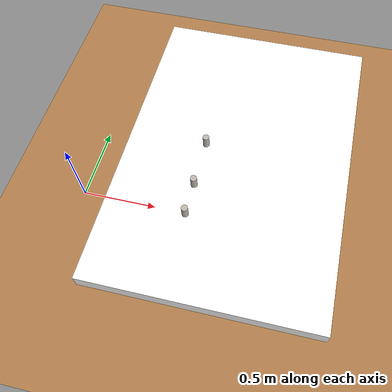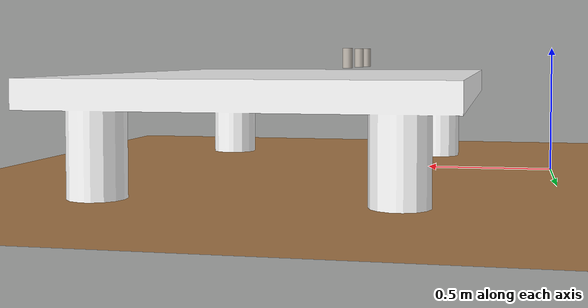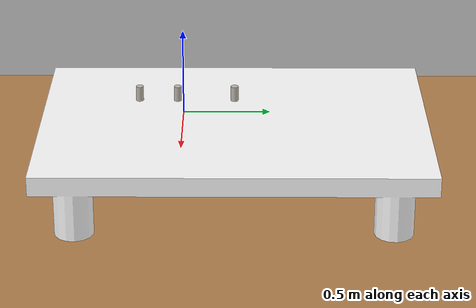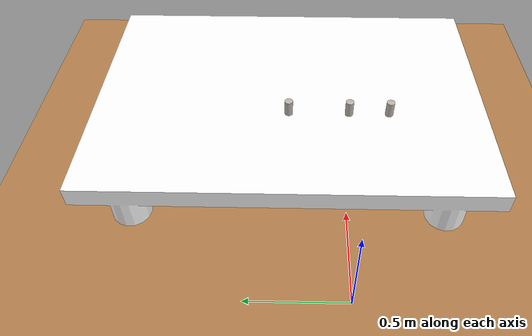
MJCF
<mujoco model="empty_floor">
  <compiler angle="radian"/>
  <option timestep="0.0005" gravity="0 0 -9.81">
      <flag sensornoise="disable" contact="enable" energy="enable" gravity="enable"/>
  </option>
  <asset>
    <texture builtin="gradient" height="256" rgb1=".9 .9 1." rgb2=".2 .3 .4" type="skybox" width="256"/>
    <texture file="../textures/wood-tiles.png" type="2d" name="texplane"/>
    <material name="floorplane" reflectance="0.01" shininess="0.0" specular="0.0" texrepeat="2 2" texture="texplane" texuniform="true"/>
    <mesh name="table" file="../objects/table/base_link.STL" scale="2.0 2.0 2.0"/>
    <mesh file="../objects/can/can.stl" name="gla_mesh" scale="1.0 1.0 1.5"/>
    <texture file="../objects/can/can.png" name="tex-can"/>
    <material name="coke" reflectance="0.7" texrepeat="5 5" texture="tex-can" texuniform="true"/>
    <texture file="../objects/can/glass.png" name="tex-gla"/>
    <material name="glass" reflectance="0.7" texrepeat="5 5" texture="tex-gla" texuniform="true"/>
    <texture file="../objects/can/ceramic.png" name="tex-cer"/>
    <material name="ceramic" reflectance="0.7" texrepeat="5 5" texture="tex-cer" texuniform="true"/>
  </asset>

  <worldbody>
    <!-- Floor -->
    <geom condim="3" material="floorplane" name="floor" pos="0 0 0" size="3 3 .125" type="plane"/>
    <light diffuse=".8 .8 .8" dir="0 -.15 -1" directional="false" pos="1 1 8.0" specular="0.3 0.3 0.3" castshadow="false"/>
    <light diffuse=".8 .8 .8" dir="0 -.15 -1" directional="false" pos="-3. -3. 8.0" specular="0.3 0.3 0.3" castshadow="false"/>
    <!-- front view -->
    <camera mode="fixed" name="frontview" pos="1.6 0 1.45" quat="0.56 0.43 0.43 0.56"/>
    <!-- bird view -->
    <camera mode="fixed" name="birdview" pos="-0.2 0 3.0" quat="0.7071 0 0 0.7071"/>
    <!-- agent view -->
    <camera mode="fixed" name="agentview" pos="0.5 0 1.35" quat="0.653 0.271 0.271 0.653"/>
    <!-- side view -->
    <camera mode="fixed" name="sideview" pos="-0.05651774593317116 1.2761224129427358 1.4879572214102434" quat="0.009905065491771751 0.006877963156909582 0.5912228352893879 0.806418094001364" />

    <body name="table" pos="1 0.3 0.35" quat="1 0 0 0">
        <inertial pos="0.00068467 1.5999e-05 0.020834" quat="0.000547318 0.708756 -0.000448023 0.705453" mass="0.16696" diaginertia="0.000143911 8.8902e-05 8.75358e-05"/>
        <geom type="mesh"  rgba="1 1 1 1" mesh="table"/>
    </body>

    <body name="green" pos="0.8 -0.2 0.46">
      <joint type="free" stiffness="0" damping="0.01" frictionloss="0" armature="0"/>
      <geom pos="0 0 0" size="0.02 0.04" type="cylinder" friction="1 0.005 0.0001" material="glass"/>
      <geom pos="0 0 0" size="0.02 0.04" type="cylinder" material="glass"/>
    </body>

    <body name="red" pos="0.8 0.3 0.46">
      <joint type="free" stiffness="0" damping="0.01" frictionloss="0" armature="0"/>
      <geom pos="0 0 0" size="0.02 0.04" type="cylinder" friction="1 0.005 0.0001" material="coke"/>
      <geom pos="0 0 0" size="0.02 0.04" type="cylinder" material="coke"/>
    </body>

    <body name="gray" pos="0.8 0.0 0.46">
      <joint type="free" stiffness="0" damping="0.01" frictionloss="0" armature="0"/>
      <geom pos="0 0 0" size="0.02 0.04" type="cylinder" friction="1 0.005 0.0001" material="ceramic"/>
      <geom pos="0 0 0" size="0.02 0.04" type="cylinder" material="ceramic"/>
    </body>

  </worldbody>

</mujoco>
